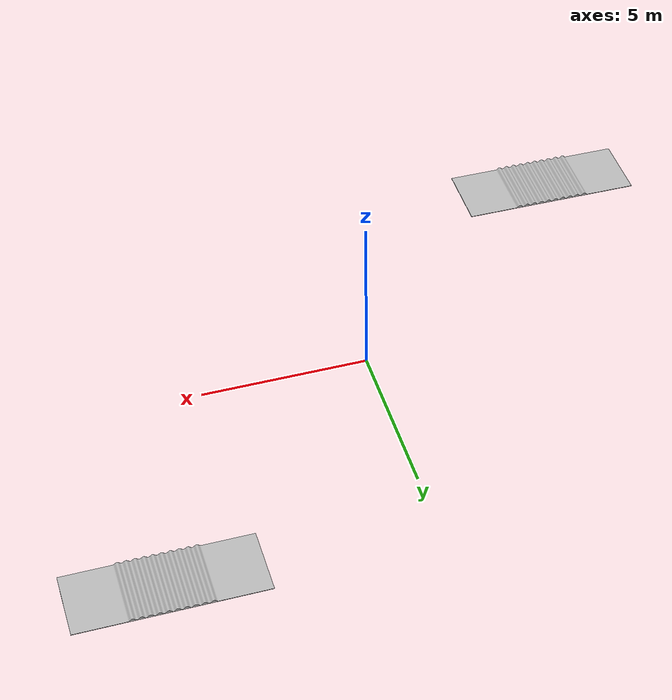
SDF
<?xml version='1.0' encoding='utf-8'?>
<sdf version='1.7'>
  <world name='default'>
    <!-- Physics -->
    <plugin filename="libignition-gazebo-physics-system.so" name="ignition::gazebo::systems::Physics">
    </plugin>

    <!-- Forwards simulation state to the GUI -->
    <plugin filename="libignition-gazebo-scene-broadcaster-system.so" name="ignition::gazebo::systems::SceneBroadcaster">
    </plugin>

    <!-- Processes user commands, like translate and create -->
    <plugin filename="libignition-gazebo-user-commands-system.so" name="ignition::gazebo::systems::UserCommands">
    </plugin>

    <!-- Generates rendering sensor data -->
    <plugin filename="libignition-gazebo-sensors-system.so" name="ignition::gazebo::systems::Sensors">
      <render_engine>ogre2</render_engine>
    </plugin>

    <plugin filename="libignition-gazebo-imu-system.so" name="ignition::gazebo::systems::Imu">
    </plugin>

    <light type='directional' name='direct_light'>
      <visualize>false</visualize>
      <cast_shadows>true</cast_shadows>
      <pose>14.6 7.9 10 0 0 0</pose>
      <diffuse>1.0 1.0 1.0 1</diffuse>
      <specular>0.5 0.5 0.5 1</specular>
      <attenuation>
        <range>1000</range>
        <constant>0.9</constant>
        <linear>0.01</linear>
        <quadratic>0.001</quadratic>
      </attenuation>
      <direction>0 0 -1</direction>
    </light>

    <model name='rmuc_2026'>
      <include>
        <uri>model://rmuc_2026</uri>
      </include>
      <pose>14 9 0 0 0 0</pose>
      <static>true</static>
    </model>

    <model name='speed_bump1'>
      <include>
        <uri>model://speed_bump</uri>
      </include>
      <pose>-10.2860 -4.7945 0.5354 1.57 0 0</pose>
      <static>true</static>
    </model>

    <model name='speed_bump2'>
      <include>
        <uri>model://speed_bump</uri>
      </include>
      <pose>4.9294 8.1159 0.5354 1.57 0 0</pose>
      <static>true</static>
    </model>
  </world>
</sdf>

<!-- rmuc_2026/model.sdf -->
<sdf version='1.6'>
  <model name='rmuc_2026'>
    <static>true</static>
    <link name='body'>
      <pose frame=''>-14 -10 2 0 0 0</pose>
      <self_collide>0</self_collide>
      <kinematic>0</kinematic>
      <gravity>1</gravity>
      <visual name='visual'>
        <geometry>
          <mesh>
            <uri>model://rmuc_2026/meshes/rmuc_2026.stl</uri>
            <scale>0.1 0.1 0.1</scale>
          </mesh>
        </geometry>
        <material>
          <ambient>0.3 0.3 0.3 1</ambient>
          <diffuse>0.7 0.7 0.7 1</diffuse>
          <specular>0.01 0.01 0.01 1</specular>
        </material>
      </visual>
      <collision name='collision'>
        <geometry>
          <mesh>
            <uri>model://rmuc_2026/meshes/rmuc_2026.stl</uri>
            <scale>0.1 0.1 0.1</scale>
          </mesh>
        </geometry>
      </collision>
    </link>
  </model>
</sdf>

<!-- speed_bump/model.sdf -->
<sdf version='1.6'>
  <model name='speed_bump'>
    <static>true</static>
    <link name='body'>
      <pose frame=''>0 0 0 0 0 0</pose>
      <self_collide>0</self_collide>
      <kinematic>0</kinematic>
      <gravity>1</gravity>
      <visual name='visual'>
        <geometry>
          <mesh>
            <uri>model://speed_bump/meshes/speed_bump.stl</uri>
            <scale>0.001 0.001 0.001</scale>
          </mesh>
        </geometry>
        <material>
          <ambient>0.3 0.3 0.3 1</ambient>
          <diffuse>0.7 0.7 0.7 1</diffuse>
          <specular>1 1 1 1</specular>
        </material>
      </visual>
      <collision name='collision'>
        <geometry>
          <mesh>
            <uri>model://speed_bump/meshes/speed_bump.stl</uri>
            <scale>0.001 0.001 0.001</scale>
          </mesh>
        </geometry>
      </collision>
    </link>
  </model>
</sdf>
